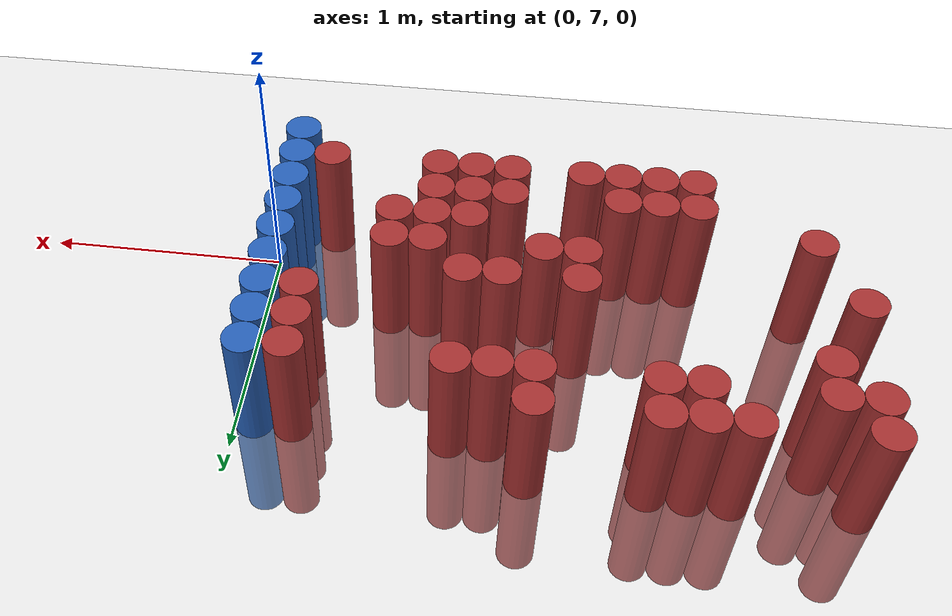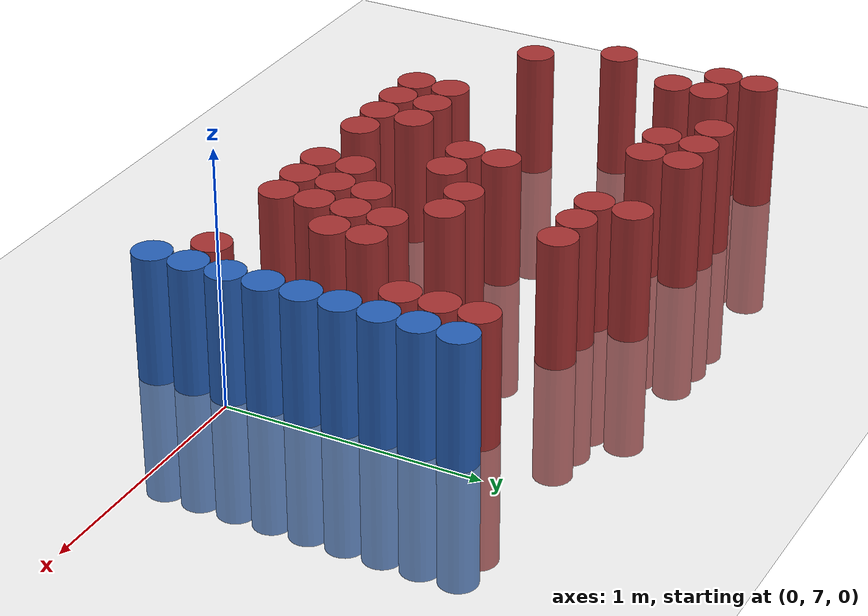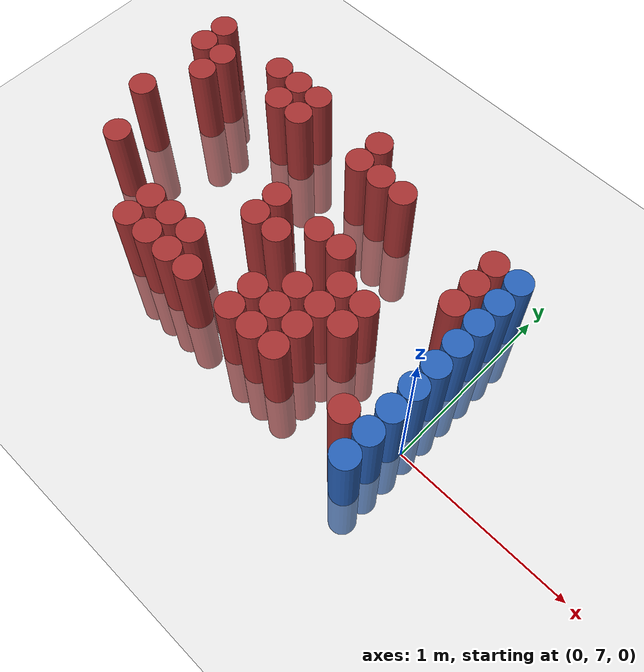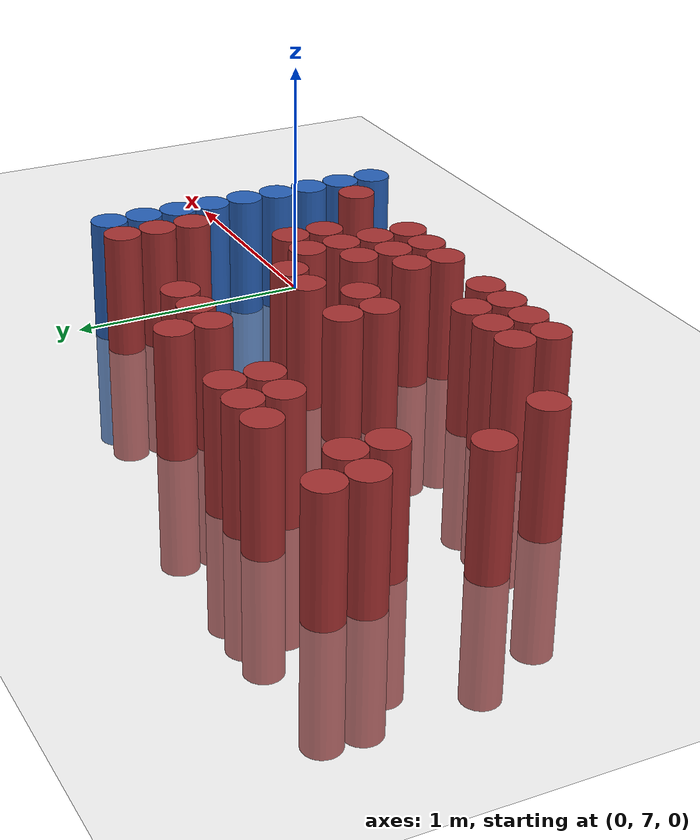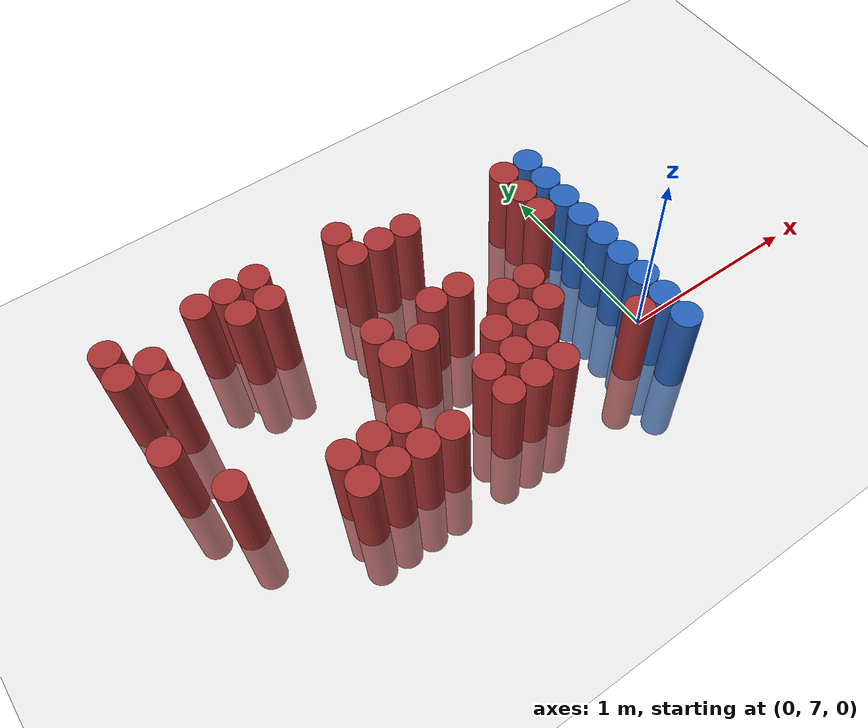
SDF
<sdf version="1.6">
 <world name="default">
  <model name="ground_plane">
   <static>1</static>
   <link name="link">
    <collision name="collision">
     <geometry><plane><normal>0 0 1</normal><size>100 100</size></plane></geometry>
     <surface><friction><ode><mu>100</mu><mu2>50</mu2></ode></friction></surface>
    </collision>
    <visual name="visual">
     <cast_shadows>0</cast_shadows>
     <geometry><plane><normal>0 0 1</normal><size>100 100</size></plane></geometry>
     <material>
      <script><uri>file://media/materials/scripts/gazebo.material</uri><name>Gazebo/Grey</name></script>
     </material>
    </visual>
   </link>
  </model>
  <model name="unit_cylinder_171">
   <static>1</static>
   <pose>-2.325000 7.425000 0.000000 0.000000 0.000000 0.000000</pose>
   <link name="link">
    <inertial>
     <mass>1</mass>
     <inertia><ixx>0.145833</ixx><ixy>0</ixy><ixz>0</ixz><iyy>0.145833</iyy><iyz>0</iyz><izz>0.125</izz></inertia>
    </inertial>
    <collision name="collision">
     <geometry><cylinder><radius>0.075000</radius><length>1</length></cylinder></geometry>
    </collision>
    <visual name="visual">
     <geometry><cylinder><radius>0.075000</radius><length>1</length></cylinder></geometry>
     <material>
      <ambient>0.648000 0.192000 0.192000 1</ambient>
      <diffuse>0.648000 0.192000 0.192000 1</diffuse>
     </material>
     <material>
      <script><name>Gazebo/Grey</name><uri>file://media/materials/scripts/gazebo.material</uri></script>
     </material>
    </visual>
   </link>
  </model>
  <model name="unit_cylinder_172">
   <static>1</static>
   <pose>-2.325000 7.875000 0.000000 0.000000 0.000000 0.000000</pose>
   <link name="link">
    <inertial>
     <mass>1</mass>
     <inertia><ixx>0.145833</ixx><ixy>0</ixy><ixz>0</ixz><iyy>0.145833</iyy><iyz>0</iyz><izz>0.125</izz></inertia>
    </inertial>
    <collision name="collision">
     <geometry><cylinder><radius>0.075000</radius><length>1</length></cylinder></geometry>
    </collision>
    <visual name="visual">
     <geometry><cylinder><radius>0.075000</radius><length>1</length></cylinder></geometry>
     <material>
      <ambient>0.648000 0.192000 0.192000 1</ambient>
      <diffuse>0.648000 0.192000 0.192000 1</diffuse>
     </material>
     <material>
      <script><name>Gazebo/Grey</name><uri>file://media/materials/scripts/gazebo.material</uri></script>
     </material>
    </visual>
   </link>
  </model>
  <model name="unit_cylinder_173">
   <static>1</static>
   <pose>-2.325000 8.025000 0.000000 0.000000 0.000000 0.000000</pose>
   <link name="link">
    <inertial>
     <mass>1</mass>
     <inertia><ixx>0.145833</ixx><ixy>0</ixy><ixz>0</ixz><iyy>0.145833</iyy><iyz>0</iyz><izz>0.125</izz></inertia>
    </inertial>
    <collision name="collision">
     <geometry><cylinder><radius>0.075000</radius><length>1</length></cylinder></geometry>
    </collision>
    <visual name="visual">
     <geometry><cylinder><radius>0.075000</radius><length>1</length></cylinder></geometry>
     <material>
      <ambient>0.648000 0.192000 0.192000 1</ambient>
      <diffuse>0.648000 0.192000 0.192000 1</diffuse>
     </material>
     <material>
      <script><name>Gazebo/Grey</name><uri>file://media/materials/scripts/gazebo.material</uri></script>
     </material>
    </visual>
   </link>
  </model>
  <model name="unit_cylinder_176">
   <static>1</static>
   <pose>-2.175000 7.125000 0.000000 0.000000 0.000000 0.000000</pose>
   <link name="link">
    <inertial>
     <mass>1</mass>
     <inertia><ixx>0.145833</ixx><ixy>0</ixy><ixz>0</ixz><iyy>0.145833</iyy><iyz>0</iyz><izz>0.125</izz></inertia>
    </inertial>
    <collision name="collision">
     <geometry><cylinder><radius>0.075000</radius><length>1</length></cylinder></geometry>
    </collision>
    <visual name="visual">
     <geometry><cylinder><radius>0.075000</radius><length>1</length></cylinder></geometry>
     <material>
      <ambient>0.648000 0.192000 0.192000 1</ambient>
      <diffuse>0.648000 0.192000 0.192000 1</diffuse>
     </material>
     <material>
      <script><name>Gazebo/Grey</name><uri>file://media/materials/scripts/gazebo.material</uri></script>
     </material>
    </visual>
   </link>
  </model>
  <model name="unit_cylinder_177">
   <static>1</static>
   <pose>-2.175000 7.725000 0.000000 0.000000 0.000000 0.000000</pose>
   <link name="link">
    <inertial>
     <mass>1</mass>
     <inertia><ixx>0.145833</ixx><ixy>0</ixy><ixz>0</ixz><iyy>0.145833</iyy><iyz>0</iyz><izz>0.125</izz></inertia>
    </inertial>
    <collision name="collision">
     <geometry><cylinder><radius>0.075000</radius><length>1</length></cylinder></geometry>
    </collision>
    <visual name="visual">
     <geometry><cylinder><radius>0.075000</radius><length>1</length></cylinder></geometry>
     <material>
      <ambient>0.648000 0.192000 0.192000 1</ambient>
      <diffuse>0.648000 0.192000 0.192000 1</diffuse>
     </material>
     <material>
      <script><name>Gazebo/Grey</name><uri>file://media/materials/scripts/gazebo.material</uri></script>
     </material>
    </visual>
   </link>
  </model>
  <model name="unit_cylinder_178">
   <static>1</static>
   <pose>-2.175000 7.875000 0.000000 0.000000 0.000000 0.000000</pose>
   <link name="link">
    <inertial>
     <mass>1</mass>
     <inertia><ixx>0.145833</ixx><ixy>0</ixy><ixz>0</ixz><iyy>0.145833</iyy><iyz>0</iyz><izz>0.125</izz></inertia>
    </inertial>
    <collision name="collision">
     <geometry><cylinder><radius>0.075000</radius><length>1</length></cylinder></geometry>
    </collision>
    <visual name="visual">
     <geometry><cylinder><radius>0.075000</radius><length>1</length></cylinder></geometry>
     <material>
      <ambient>0.648000 0.192000 0.192000 1</ambient>
      <diffuse>0.648000 0.192000 0.192000 1</diffuse>
     </material>
     <material>
      <script><name>Gazebo/Grey</name><uri>file://media/materials/scripts/gazebo.material</uri></script>
     </material>
    </visual>
   </link>
  </model>
  <model name="unit_cylinder_192">
   <static>1</static>
   <pose>-1.875000 8.025000 0.000000 0.000000 0.000000 0.000000</pose>
   <link name="link">
    <inertial>
     <mass>1</mass>
     <inertia><ixx>0.145833</ixx><ixy>0</ixy><ixz>0</ixz><iyy>0.145833</iyy><iyz>0</iyz><izz>0.125</izz></inertia>
    </inertial>
    <collision name="collision">
     <geometry><cylinder><radius>0.075000</radius><length>1</length></cylinder></geometry>
    </collision>
    <visual name="visual">
     <geometry><cylinder><radius>0.075000</radius><length>1</length></cylinder></geometry>
     <material>
      <ambient>0.648000 0.192000 0.192000 1</ambient>
      <diffuse>0.648000 0.192000 0.192000 1</diffuse>
     </material>
     <material>
      <script><name>Gazebo/Grey</name><uri>file://media/materials/scripts/gazebo.material</uri></script>
     </material>
    </visual>
   </link>
  </model>
  <model name="unit_cylinder_199">
   <static>1</static>
   <pose>-1.725000 6.825000 0.000000 0.000000 0.000000 0.000000</pose>
   <link name="link">
    <inertial>
     <mass>1</mass>
     <inertia><ixx>0.145833</ixx><ixy>0</ixy><ixz>0</ixz><iyy>0.145833</iyy><iyz>0</iyz><izz>0.125</izz></inertia>
    </inertial>
    <collision name="collision">
     <geometry><cylinder><radius>0.075000</radius><length>1</length></cylinder></geometry>
    </collision>
    <visual name="visual">
     <geometry><cylinder><radius>0.075000</radius><length>1</length></cylinder></geometry>
     <material>
      <ambient>0.648000 0.192000 0.192000 1</ambient>
      <diffuse>0.648000 0.192000 0.192000 1</diffuse>
     </material>
     <material>
      <script><name>Gazebo/Grey</name><uri>file://media/materials/scripts/gazebo.material</uri></script>
     </material>
    </visual>
   </link>
  </model>
  <model name="unit_cylinder_200">
   <static>1</static>
   <pose>-1.725000 6.975000 0.000000 0.000000 0.000000 0.000000</pose>
   <link name="link">
    <inertial>
     <mass>1</mass>
     <inertia><ixx>0.145833</ixx><ixy>0</ixy><ixz>0</ixz><iyy>0.145833</iyy><iyz>0</iyz><izz>0.125</izz></inertia>
    </inertial>
    <collision name="collision">
     <geometry><cylinder><radius>0.075000</radius><length>1</length></cylinder></geometry>
    </collision>
    <visual name="visual">
     <geometry><cylinder><radius>0.075000</radius><length>1</length></cylinder></geometry>
     <material>
      <ambient>0.648000 0.192000 0.192000 1</ambient>
      <diffuse>0.648000 0.192000 0.192000 1</diffuse>
     </material>
     <material>
      <script><name>Gazebo/Grey</name><uri>file://media/materials/scripts/gazebo.material</uri></script>
     </material>
    </visual>
   </link>
  </model>
  <model name="unit_cylinder_201">
   <static>1</static>
   <pose>-1.725000 7.875000 0.000000 0.000000 0.000000 0.000000</pose>
   <link name="link">
    <inertial>
     <mass>1</mass>
     <inertia><ixx>0.145833</ixx><ixy>0</ixy><ixz>0</ixz><iyy>0.145833</iyy><iyz>0</iyz><izz>0.125</izz></inertia>
    </inertial>
    <collision name="collision">
     <geometry><cylinder><radius>0.075000</radius><length>1</length></cylinder></geometry>
    </collision>
    <visual name="visual">
     <geometry><cylinder><radius>0.075000</radius><length>1</length></cylinder></geometry>
     <material>
      <ambient>0.648000 0.192000 0.192000 1</ambient>
      <diffuse>0.648000 0.192000 0.192000 1</diffuse>
     </material>
     <material>
      <script><name>Gazebo/Grey</name><uri>file://media/materials/scripts/gazebo.material</uri></script>
     </material>
    </visual>
   </link>
  </model>
  <model name="unit_cylinder_202">
   <static>1</static>
   <pose>-1.725000 8.025000 0.000000 0.000000 0.000000 0.000000</pose>
   <link name="link">
    <inertial>
     <mass>1</mass>
     <inertia><ixx>0.145833</ixx><ixy>0</ixy><ixz>0</ixz><iyy>0.145833</iyy><iyz>0</iyz><izz>0.125</izz></inertia>
    </inertial>
    <collision name="collision">
     <geometry><cylinder><radius>0.075000</radius><length>1</length></cylinder></geometry>
    </collision>
    <visual name="visual">
     <geometry><cylinder><radius>0.075000</radius><length>1</length></cylinder></geometry>
     <material>
      <ambient>0.648000 0.192000 0.192000 1</ambient>
      <diffuse>0.648000 0.192000 0.192000 1</diffuse>
     </material>
     <material>
      <script><name>Gazebo/Grey</name><uri>file://media/materials/scripts/gazebo.material</uri></script>
     </material>
    </visual>
   </link>
  </model>
  <model name="unit_cylinder_206">
   <static>1</static>
   <pose>-1.575000 6.825000 0.000000 0.000000 0.000000 0.000000</pose>
   <link name="link">
    <inertial>
     <mass>1</mass>
     <inertia><ixx>0.145833</ixx><ixy>0</ixy><ixz>0</ixz><iyy>0.145833</iyy><iyz>0</iyz><izz>0.125</izz></inertia>
    </inertial>
    <collision name="collision">
     <geometry><cylinder><radius>0.075000</radius><length>1</length></cylinder></geometry>
    </collision>
    <visual name="visual">
     <geometry><cylinder><radius>0.075000</radius><length>1</length></cylinder></geometry>
     <material>
      <ambient>0.648000 0.192000 0.192000 1</ambient>
      <diffuse>0.648000 0.192000 0.192000 1</diffuse>
     </material>
     <material>
      <script><name>Gazebo/Grey</name><uri>file://media/materials/scripts/gazebo.material</uri></script>
     </material>
    </visual>
   </link>
  </model>
  <model name="unit_cylinder_207">
   <static>1</static>
   <pose>-1.575000 6.975000 0.000000 0.000000 0.000000 0.000000</pose>
   <link name="link">
    <inertial>
     <mass>1</mass>
     <inertia><ixx>0.145833</ixx><ixy>0</ixy><ixz>0</ixz><iyy>0.145833</iyy><iyz>0</iyz><izz>0.125</izz></inertia>
    </inertial>
    <collision name="collision">
     <geometry><cylinder><radius>0.075000</radius><length>1</length></cylinder></geometry>
    </collision>
    <visual name="visual">
     <geometry><cylinder><radius>0.075000</radius><length>1</length></cylinder></geometry>
     <material>
      <ambient>0.648000 0.192000 0.192000 1</ambient>
      <diffuse>0.648000 0.192000 0.192000 1</diffuse>
     </material>
     <material>
      <script><name>Gazebo/Grey</name><uri>file://media/materials/scripts/gazebo.material</uri></script>
     </material>
    </visual>
   </link>
  </model>
  <model name="unit_cylinder_208">
   <static>1</static>
   <pose>-1.575000 7.875000 0.000000 0.000000 0.000000 0.000000</pose>
   <link name="link">
    <inertial>
     <mass>1</mass>
     <inertia><ixx>0.145833</ixx><ixy>0</ixy><ixz>0</ixz><iyy>0.145833</iyy><iyz>0</iyz><izz>0.125</izz></inertia>
    </inertial>
    <collision name="collision">
     <geometry><cylinder><radius>0.075000</radius><length>1</length></cylinder></geometry>
    </collision>
    <visual name="visual">
     <geometry><cylinder><radius>0.075000</radius><length>1</length></cylinder></geometry>
     <material>
      <ambient>0.648000 0.192000 0.192000 1</ambient>
      <diffuse>0.648000 0.192000 0.192000 1</diffuse>
     </material>
     <material>
      <script><name>Gazebo/Grey</name><uri>file://media/materials/scripts/gazebo.material</uri></script>
     </material>
    </visual>
   </link>
  </model>
  <model name="unit_cylinder_209">
   <static>1</static>
   <pose>-1.575000 8.025000 0.000000 0.000000 0.000000 0.000000</pose>
   <link name="link">
    <inertial>
     <mass>1</mass>
     <inertia><ixx>0.145833</ixx><ixy>0</ixy><ixz>0</ixz><iyy>0.145833</iyy><iyz>0</iyz><izz>0.125</izz></inertia>
    </inertial>
    <collision name="collision">
     <geometry><cylinder><radius>0.075000</radius><length>1</length></cylinder></geometry>
    </collision>
    <visual name="visual">
     <geometry><cylinder><radius>0.075000</radius><length>1</length></cylinder></geometry>
     <material>
      <ambient>0.648000 0.192000 0.192000 1</ambient>
      <diffuse>0.648000 0.192000 0.192000 1</diffuse>
     </material>
     <material>
      <script><name>Gazebo/Grey</name><uri>file://media/materials/scripts/gazebo.material</uri></script>
     </material>
    </visual>
   </link>
  </model>
  <model name="unit_cylinder_214">
   <static>1</static>
   <pose>-1.425000 6.825000 0.000000 0.000000 0.000000 0.000000</pose>
   <link name="link">
    <inertial>
     <mass>1</mass>
     <inertia><ixx>0.145833</ixx><ixy>0</ixy><ixz>0</ixz><iyy>0.145833</iyy><iyz>0</iyz><izz>0.125</izz></inertia>
    </inertial>
    <collision name="collision">
     <geometry><cylinder><radius>0.075000</radius><length>1</length></cylinder></geometry>
    </collision>
    <visual name="visual">
     <geometry><cylinder><radius>0.075000</radius><length>1</length></cylinder></geometry>
     <material>
      <ambient>0.648000 0.192000 0.192000 1</ambient>
      <diffuse>0.648000 0.192000 0.192000 1</diffuse>
     </material>
     <material>
      <script><name>Gazebo/Grey</name><uri>file://media/materials/scripts/gazebo.material</uri></script>
     </material>
    </visual>
   </link>
  </model>
  <model name="unit_cylinder_215">
   <static>1</static>
   <pose>-1.425000 6.975000 0.000000 0.000000 0.000000 0.000000</pose>
   <link name="link">
    <inertial>
     <mass>1</mass>
     <inertia><ixx>0.145833</ixx><ixy>0</ixy><ixz>0</ixz><iyy>0.145833</iyy><iyz>0</iyz><izz>0.125</izz></inertia>
    </inertial>
    <collision name="collision">
     <geometry><cylinder><radius>0.075000</radius><length>1</length></cylinder></geometry>
    </collision>
    <visual name="visual">
     <geometry><cylinder><radius>0.075000</radius><length>1</length></cylinder></geometry>
     <material>
      <ambient>0.648000 0.192000 0.192000 1</ambient>
      <diffuse>0.648000 0.192000 0.192000 1</diffuse>
     </material>
     <material>
      <script><name>Gazebo/Grey</name><uri>file://media/materials/scripts/gazebo.material</uri></script>
     </material>
    </visual>
   </link>
  </model>
  <model name="unit_cylinder_220">
   <static>1</static>
   <pose>-1.275000 6.825000 0.000000 0.000000 0.000000 0.000000</pose>
   <link name="link">
    <inertial>
     <mass>1</mass>
     <inertia><ixx>0.145833</ixx><ixy>0</ixy><ixz>0</ixz><iyy>0.145833</iyy><iyz>0</iyz><izz>0.125</izz></inertia>
    </inertial>
    <collision name="collision">
     <geometry><cylinder><radius>0.075000</radius><length>1</length></cylinder></geometry>
    </collision>
    <visual name="visual">
     <geometry><cylinder><radius>0.075000</radius><length>1</length></cylinder></geometry>
     <material>
      <ambient>0.648000 0.192000 0.192000 1</ambient>
      <diffuse>0.648000 0.192000 0.192000 1</diffuse>
     </material>
     <material>
      <script><name>Gazebo/Grey</name><uri>file://media/materials/scripts/gazebo.material</uri></script>
     </material>
    </visual>
   </link>
  </model>
  <model name="unit_cylinder_221">
   <static>1</static>
   <pose>-1.275000 7.275000 0.000000 0.000000 0.000000 0.000000</pose>
   <link name="link">
    <inertial>
     <mass>1</mass>
     <inertia><ixx>0.145833</ixx><ixy>0</ixy><ixz>0</ixz><iyy>0.145833</iyy><iyz>0</iyz><izz>0.125</izz></inertia>
    </inertial>
    <collision name="collision">
     <geometry><cylinder><radius>0.075000</radius><length>1</length></cylinder></geometry>
    </collision>
    <visual name="visual">
     <geometry><cylinder><radius>0.075000</radius><length>1</length></cylinder></geometry>
     <material>
      <ambient>0.648000 0.192000 0.192000 1</ambient>
      <diffuse>0.648000 0.192000 0.192000 1</diffuse>
     </material>
     <material>
      <script><name>Gazebo/Grey</name><uri>file://media/materials/scripts/gazebo.material</uri></script>
     </material>
    </visual>
   </link>
  </model>
  <model name="unit_cylinder_222">
   <static>1</static>
   <pose>-1.275000 7.425000 0.000000 0.000000 0.000000 0.000000</pose>
   <link name="link">
    <inertial>
     <mass>1</mass>
     <inertia><ixx>0.145833</ixx><ixy>0</ixy><ixz>0</ixz><iyy>0.145833</iyy><iyz>0</iyz><izz>0.125</izz></inertia>
    </inertial>
    <collision name="collision">
     <geometry><cylinder><radius>0.075000</radius><length>1</length></cylinder></geometry>
    </collision>
    <visual name="visual">
     <geometry><cylinder><radius>0.075000</radius><length>1</length></cylinder></geometry>
     <material>
      <ambient>0.648000 0.192000 0.192000 1</ambient>
      <diffuse>0.648000 0.192000 0.192000 1</diffuse>
     </material>
     <material>
      <script><name>Gazebo/Grey</name><uri>file://media/materials/scripts/gazebo.material</uri></script>
     </material>
    </visual>
   </link>
  </model>
  <model name="unit_cylinder_225">
   <static>1</static>
   <pose>-1.125000 7.275000 0.000000 0.000000 0.000000 0.000000</pose>
   <link name="link">
    <inertial>
     <mass>1</mass>
     <inertia><ixx>0.145833</ixx><ixy>0</ixy><ixz>0</ixz><iyy>0.145833</iyy><iyz>0</iyz><izz>0.125</izz></inertia>
    </inertial>
    <collision name="collision">
     <geometry><cylinder><radius>0.075000</radius><length>1</length></cylinder></geometry>
    </collision>
    <visual name="visual">
     <geometry><cylinder><radius>0.075000</radius><length>1</length></cylinder></geometry>
     <material>
      <ambient>0.648000 0.192000 0.192000 1</ambient>
      <diffuse>0.648000 0.192000 0.192000 1</diffuse>
     </material>
     <material>
      <script><name>Gazebo/Grey</name><uri>file://media/materials/scripts/gazebo.material</uri></script>
     </material>
    </visual>
   </link>
  </model>
  <model name="unit_cylinder_226">
   <static>1</static>
   <pose>-1.125000 7.875000 0.000000 0.000000 0.000000 0.000000</pose>
   <link name="link">
    <inertial>
     <mass>1</mass>
     <inertia><ixx>0.145833</ixx><ixy>0</ixy><ixz>0</ixz><iyy>0.145833</iyy><iyz>0</iyz><izz>0.125</izz></inertia>
    </inertial>
    <collision name="collision">
     <geometry><cylinder><radius>0.075000</radius><length>1</length></cylinder></geometry>
    </collision>
    <visual name="visual">
     <geometry><cylinder><radius>0.075000</radius><length>1</length></cylinder></geometry>
     <material>
      <ambient>0.648000 0.192000 0.192000 1</ambient>
      <diffuse>0.648000 0.192000 0.192000 1</diffuse>
     </material>
     <material>
      <script><name>Gazebo/Grey</name><uri>file://media/materials/scripts/gazebo.material</uri></script>
     </material>
    </visual>
   </link>
  </model>
  <model name="unit_cylinder_227">
   <static>1</static>
   <pose>-1.125000 8.025000 0.000000 0.000000 0.000000 0.000000</pose>
   <link name="link">
    <inertial>
     <mass>1</mass>
     <inertia><ixx>0.145833</ixx><ixy>0</ixy><ixz>0</ixz><iyy>0.145833</iyy><iyz>0</iyz><izz>0.125</izz></inertia>
    </inertial>
    <collision name="collision">
     <geometry><cylinder><radius>0.075000</radius><length>1</length></cylinder></geometry>
    </collision>
    <visual name="visual">
     <geometry><cylinder><radius>0.075000</radius><length>1</length></cylinder></geometry>
     <material>
      <ambient>0.648000 0.192000 0.192000 1</ambient>
      <diffuse>0.648000 0.192000 0.192000 1</diffuse>
     </material>
     <material>
      <script><name>Gazebo/Grey</name><uri>file://media/materials/scripts/gazebo.material</uri></script>
     </material>
    </visual>
   </link>
  </model>
  <model name="unit_cylinder_228">
   <static>1</static>
   <pose>-0.975000 6.825000 0.000000 0.000000 0.000000 0.000000</pose>
   <link name="link">
    <inertial>
     <mass>1</mass>
     <inertia><ixx>0.145833</ixx><ixy>0</ixy><ixz>0</ixz><iyy>0.145833</iyy><iyz>0</iyz><izz>0.125</izz></inertia>
    </inertial>
    <collision name="collision">
     <geometry><cylinder><radius>0.075000</radius><length>1</length></cylinder></geometry>
    </collision>
    <visual name="visual">
     <geometry><cylinder><radius>0.075000</radius><length>1</length></cylinder></geometry>
     <material>
      <ambient>0.648000 0.192000 0.192000 1</ambient>
      <diffuse>0.648000 0.192000 0.192000 1</diffuse>
     </material>
     <material>
      <script><name>Gazebo/Grey</name><uri>file://media/materials/scripts/gazebo.material</uri></script>
     </material>
    </visual>
   </link>
  </model>
  <model name="unit_cylinder_229">
   <static>1</static>
   <pose>-0.975000 6.975000 0.000000 0.000000 0.000000 0.000000</pose>
   <link name="link">
    <inertial>
     <mass>1</mass>
     <inertia><ixx>0.145833</ixx><ixy>0</ixy><ixz>0</ixz><iyy>0.145833</iyy><iyz>0</iyz><izz>0.125</izz></inertia>
    </inertial>
    <collision name="collision">
     <geometry><cylinder><radius>0.075000</radius><length>1</length></cylinder></geometry>
    </collision>
    <visual name="visual">
     <geometry><cylinder><radius>0.075000</radius><length>1</length></cylinder></geometry>
     <material>
      <ambient>0.648000 0.192000 0.192000 1</ambient>
      <diffuse>0.648000 0.192000 0.192000 1</diffuse>
     </material>
     <material>
      <script><name>Gazebo/Grey</name><uri>file://media/materials/scripts/gazebo.material</uri></script>
     </material>
    </visual>
   </link>
  </model>
  <model name="unit_cylinder_230">
   <static>1</static>
   <pose>-0.975000 7.425000 0.000000 0.000000 0.000000 0.000000</pose>
   <link name="link">
    <inertial>
     <mass>1</mass>
     <inertia><ixx>0.145833</ixx><ixy>0</ixy><ixz>0</ixz><iyy>0.145833</iyy><iyz>0</iyz><izz>0.125</izz></inertia>
    </inertial>
    <collision name="collision">
     <geometry><cylinder><radius>0.075000</radius><length>1</length></cylinder></geometry>
    </collision>
    <visual name="visual">
     <geometry><cylinder><radius>0.075000</radius><length>1</length></cylinder></geometry>
     <material>
      <ambient>0.648000 0.192000 0.192000 1</ambient>
      <diffuse>0.648000 0.192000 0.192000 1</diffuse>
     </material>
     <material>
      <script><name>Gazebo/Grey</name><uri>file://media/materials/scripts/gazebo.material</uri></script>
     </material>
    </visual>
   </link>
  </model>
  <model name="unit_cylinder_231">
   <static>1</static>
   <pose>-0.975000 7.875000 0.000000 0.000000 0.000000 0.000000</pose>
   <link name="link">
    <inertial>
     <mass>1</mass>
     <inertia><ixx>0.145833</ixx><ixy>0</ixy><ixz>0</ixz><iyy>0.145833</iyy><iyz>0</iyz><izz>0.125</izz></inertia>
    </inertial>
    <collision name="collision">
     <geometry><cylinder><radius>0.075000</radius><length>1</length></cylinder></geometry>
    </collision>
    <visual name="visual">
     <geometry><cylinder><radius>0.075000</radius><length>1</length></cylinder></geometry>
     <material>
      <ambient>0.648000 0.192000 0.192000 1</ambient>
      <diffuse>0.648000 0.192000 0.192000 1</diffuse>
     </material>
     <material>
      <script><name>Gazebo/Grey</name><uri>file://media/materials/scripts/gazebo.material</uri></script>
     </material>
    </visual>
   </link>
  </model>
  <model name="unit_cylinder_234">
   <static>1</static>
   <pose>-0.825000 6.825000 0.000000 0.000000 0.000000 0.000000</pose>
   <link name="link">
    <inertial>
     <mass>1</mass>
     <inertia><ixx>0.145833</ixx><ixy>0</ixy><ixz>0</ixz><iyy>0.145833</iyy><iyz>0</iyz><izz>0.125</izz></inertia>
    </inertial>
    <collision name="collision">
     <geometry><cylinder><radius>0.075000</radius><length>1</length></cylinder></geometry>
    </collision>
    <visual name="visual">
     <geometry><cylinder><radius>0.075000</radius><length>1</length></cylinder></geometry>
     <material>
      <ambient>0.648000 0.192000 0.192000 1</ambient>
      <diffuse>0.648000 0.192000 0.192000 1</diffuse>
     </material>
     <material>
      <script><name>Gazebo/Grey</name><uri>file://media/materials/scripts/gazebo.material</uri></script>
     </material>
    </visual>
   </link>
  </model>
  <model name="unit_cylinder_235">
   <static>1</static>
   <pose>-0.825000 6.975000 0.000000 0.000000 0.000000 0.000000</pose>
   <link name="link">
    <inertial>
     <mass>1</mass>
     <inertia><ixx>0.145833</ixx><ixy>0</ixy><ixz>0</ixz><iyy>0.145833</iyy><iyz>0</iyz><izz>0.125</izz></inertia>
    </inertial>
    <collision name="collision">
     <geometry><cylinder><radius>0.075000</radius><length>1</length></cylinder></geometry>
    </collision>
    <visual name="visual">
     <geometry><cylinder><radius>0.075000</radius><length>1</length></cylinder></geometry>
     <material>
      <ambient>0.648000 0.192000 0.192000 1</ambient>
      <diffuse>0.648000 0.192000 0.192000 1</diffuse>
     </material>
     <material>
      <script><name>Gazebo/Grey</name><uri>file://media/materials/scripts/gazebo.material</uri></script>
     </material>
    </visual>
   </link>
  </model>
  <model name="unit_cylinder_236">
   <static>1</static>
   <pose>-0.825000 7.125000 0.000000 0.000000 0.000000 0.000000</pose>
   <link name="link">
    <inertial>
     <mass>1</mass>
     <inertia><ixx>0.145833</ixx><ixy>0</ixy><ixz>0</ixz><iyy>0.145833</iyy><iyz>0</iyz><izz>0.125</izz></inertia>
    </inertial>
    <collision name="collision">
     <geometry><cylinder><radius>0.075000</radius><length>1</length></cylinder></geometry>
    </collision>
    <visual name="visual">
     <geometry><cylinder><radius>0.075000</radius><length>1</length></cylinder></geometry>
     <material>
      <ambient>0.648000 0.192000 0.192000 1</ambient>
      <diffuse>0.648000 0.192000 0.192000 1</diffuse>
     </material>
     <material>
      <script><name>Gazebo/Grey</name><uri>file://media/materials/scripts/gazebo.material</uri></script>
     </material>
    </visual>
   </link>
  </model>
  <model name="unit_cylinder_237">
   <static>1</static>
   <pose>-0.825000 7.425000 0.000000 0.000000 0.000000 0.000000</pose>
   <link name="link">
    <inertial>
     <mass>1</mass>
     <inertia><ixx>0.145833</ixx><ixy>0</ixy><ixz>0</ixz><iyy>0.145833</iyy><iyz>0</iyz><izz>0.125</izz></inertia>
    </inertial>
    <collision name="collision">
     <geometry><cylinder><radius>0.075000</radius><length>1</length></cylinder></geometry>
    </collision>
    <visual name="visual">
     <geometry><cylinder><radius>0.075000</radius><length>1</length></cylinder></geometry>
     <material>
      <ambient>0.648000 0.192000 0.192000 1</ambient>
      <diffuse>0.648000 0.192000 0.192000 1</diffuse>
     </material>
     <material>
      <script><name>Gazebo/Grey</name><uri>file://media/materials/scripts/gazebo.material</uri></script>
     </material>
    </visual>
   </link>
  </model>
  <model name="unit_cylinder_238">
   <static>1</static>
   <pose>-0.825000 7.875000 0.000000 0.000000 0.000000 0.000000</pose>
   <link name="link">
    <inertial>
     <mass>1</mass>
     <inertia><ixx>0.145833</ixx><ixy>0</ixy><ixz>0</ixz><iyy>0.145833</iyy><iyz>0</iyz><izz>0.125</izz></inertia>
    </inertial>
    <collision name="collision">
     <geometry><cylinder><radius>0.075000</radius><length>1</length></cylinder></geometry>
    </collision>
    <visual name="visual">
     <geometry><cylinder><radius>0.075000</radius><length>1</length></cylinder></geometry>
     <material>
      <ambient>0.648000 0.192000 0.192000 1</ambient>
      <diffuse>0.648000 0.192000 0.192000 1</diffuse>
     </material>
     <material>
      <script><name>Gazebo/Grey</name><uri>file://media/materials/scripts/gazebo.material</uri></script>
     </material>
    </visual>
   </link>
  </model>
  <model name="unit_cylinder_242">
   <static>1</static>
   <pose>-0.675000 6.825000 0.000000 0.000000 0.000000 0.000000</pose>
   <link name="link">
    <inertial>
     <mass>1</mass>
     <inertia><ixx>0.145833</ixx><ixy>0</ixy><ixz>0</ixz><iyy>0.145833</iyy><iyz>0</iyz><izz>0.125</izz></inertia>
    </inertial>
    <collision name="collision">
     <geometry><cylinder><radius>0.075000</radius><length>1</length></cylinder></geometry>
    </collision>
    <visual name="visual">
     <geometry><cylinder><radius>0.075000</radius><length>1</length></cylinder></geometry>
     <material>
      <ambient>0.648000 0.192000 0.192000 1</ambient>
      <diffuse>0.648000 0.192000 0.192000 1</diffuse>
     </material>
     <material>
      <script><name>Gazebo/Grey</name><uri>file://media/materials/scripts/gazebo.material</uri></script>
     </material>
    </visual>
   </link>
  </model>
  <model name="unit_cylinder_243">
   <static>1</static>
   <pose>-0.675000 6.975000 0.000000 0.000000 0.000000 0.000000</pose>
   <link name="link">
    <inertial>
     <mass>1</mass>
     <inertia><ixx>0.145833</ixx><ixy>0</ixy><ixz>0</ixz><iyy>0.145833</iyy><iyz>0</iyz><izz>0.125</izz></inertia>
    </inertial>
    <collision name="collision">
     <geometry><cylinder><radius>0.075000</radius><length>1</length></cylinder></geometry>
    </collision>
    <visual name="visual">
     <geometry><cylinder><radius>0.075000</radius><length>1</length></cylinder></geometry>
     <material>
      <ambient>0.648000 0.192000 0.192000 1</ambient>
      <diffuse>0.648000 0.192000 0.192000 1</diffuse>
     </material>
     <material>
      <script><name>Gazebo/Grey</name><uri>file://media/materials/scripts/gazebo.material</uri></script>
     </material>
    </visual>
   </link>
  </model>
  <model name="unit_cylinder_244">
   <static>1</static>
   <pose>-0.675000 7.125000 0.000000 0.000000 0.000000 0.000000</pose>
   <link name="link">
    <inertial>
     <mass>1</mass>
     <inertia><ixx>0.145833</ixx><ixy>0</ixy><ixz>0</ixz><iyy>0.145833</iyy><iyz>0</iyz><izz>0.125</izz></inertia>
    </inertial>
    <collision name="collision">
     <geometry><cylinder><radius>0.075000</radius><length>1</length></cylinder></geometry>
    </collision>
    <visual name="visual">
     <geometry><cylinder><radius>0.075000</radius><length>1</length></cylinder></geometry>
     <material>
      <ambient>0.648000 0.192000 0.192000 1</ambient>
      <diffuse>0.648000 0.192000 0.192000 1</diffuse>
     </material>
     <material>
      <script><name>Gazebo/Grey</name><uri>file://media/materials/scripts/gazebo.material</uri></script>
     </material>
    </visual>
   </link>
  </model>
  <model name="unit_cylinder_245">
   <static>1</static>
   <pose>-0.675000 7.275000 0.000000 0.000000 0.000000 0.000000</pose>
   <link name="link">
    <inertial>
     <mass>1</mass>
     <inertia><ixx>0.145833</ixx><ixy>0</ixy><ixz>0</ixz><iyy>0.145833</iyy><iyz>0</iyz><izz>0.125</izz></inertia>
    </inertial>
    <collision name="collision">
     <geometry><cylinder><radius>0.075000</radius><length>1</length></cylinder></geometry>
    </collision>
    <visual name="visual">
     <geometry><cylinder><radius>0.075000</radius><length>1</length></cylinder></geometry>
     <material>
      <ambient>0.648000 0.192000 0.192000 1</ambient>
      <diffuse>0.648000 0.192000 0.192000 1</diffuse>
     </material>
     <material>
      <script><name>Gazebo/Grey</name><uri>file://media/materials/scripts/gazebo.material</uri></script>
     </material>
    </visual>
   </link>
  </model>
  <model name="unit_cylinder_250">
   <static>1</static>
   <pose>-0.525000 7.125000 0.000000 0.000000 0.000000 0.000000</pose>
   <link name="link">
    <inertial>
     <mass>1</mass>
     <inertia><ixx>0.145833</ixx><ixy>0</ixy><ixz>0</ixz><iyy>0.145833</iyy><iyz>0</iyz><izz>0.125</izz></inertia>
    </inertial>
    <collision name="collision">
     <geometry><cylinder><radius>0.075000</radius><length>1</length></cylinder></geometry>
    </collision>
    <visual name="visual">
     <geometry><cylinder><radius>0.075000</radius><length>1</length></cylinder></geometry>
     <material>
      <ambient>0.648000 0.192000 0.192000 1</ambient>
      <diffuse>0.648000 0.192000 0.192000 1</diffuse>
     </material>
     <material>
      <script><name>Gazebo/Grey</name><uri>file://media/materials/scripts/gazebo.material</uri></script>
     </material>
    </visual>
   </link>
  </model>
  <model name="unit_cylinder_251">
   <static>1</static>
   <pose>-0.525000 7.275000 0.000000 0.000000 0.000000 0.000000</pose>
   <link name="link">
    <inertial>
     <mass>1</mass>
     <inertia><ixx>0.145833</ixx><ixy>0</ixy><ixz>0</ixz><iyy>0.145833</iyy><iyz>0</iyz><izz>0.125</izz></inertia>
    </inertial>
    <collision name="collision">
     <geometry><cylinder><radius>0.075000</radius><length>1</length></cylinder></geometry>
    </collision>
    <visual name="visual">
     <geometry><cylinder><radius>0.075000</radius><length>1</length></cylinder></geometry>
     <material>
      <ambient>0.648000 0.192000 0.192000 1</ambient>
      <diffuse>0.648000 0.192000 0.192000 1</diffuse>
     </material>
     <material>
      <script><name>Gazebo/Grey</name><uri>file://media/materials/scripts/gazebo.material</uri></script>
     </material>
    </visual>
   </link>
  </model>
  <model name="unit_cylinder_267">
   <static>1</static>
   <pose>-0.225000 6.825000 0.000000 0.000000 0.000000 0.000000</pose>
   <link name="link">
    <inertial>
     <mass>1</mass>
     <inertia><ixx>0.145833</ixx><ixy>0</ixy><ixz>0</ixz><iyy>0.145833</iyy><iyz>0</iyz><izz>0.125</izz></inertia>
    </inertial>
    <collision name="collision">
     <geometry><cylinder><radius>0.075000</radius><length>1</length></cylinder></geometry>
    </collision>
    <visual name="visual">
     <geometry><cylinder><radius>0.075000</radius><length>1</length></cylinder></geometry>
     <material>
      <ambient>0.648000 0.192000 0.192000 1</ambient>
      <diffuse>0.648000 0.192000 0.192000 1</diffuse>
     </material>
     <material>
      <script><name>Gazebo/Grey</name><uri>file://media/materials/scripts/gazebo.material</uri></script>
     </material>
    </visual>
   </link>
  </model>
  <model name="unit_cylinder_268">
   <static>1</static>
   <pose>-0.225000 7.575000 0.000000 0.000000 0.000000 0.000000</pose>
   <link name="link">
    <inertial>
     <mass>1</mass>
     <inertia><ixx>0.145833</ixx><ixy>0</ixy><ixz>0</ixz><iyy>0.145833</iyy><iyz>0</iyz><izz>0.125</izz></inertia>
    </inertial>
    <collision name="collision">
     <geometry><cylinder><radius>0.075000</radius><length>1</length></cylinder></geometry>
    </collision>
    <visual name="visual">
     <geometry><cylinder><radius>0.075000</radius><length>1</length></cylinder></geometry>
     <material>
      <ambient>0.648000 0.192000 0.192000 1</ambient>
      <diffuse>0.648000 0.192000 0.192000 1</diffuse>
     </material>
     <material>
      <script><name>Gazebo/Grey</name><uri>file://media/materials/scripts/gazebo.material</uri></script>
     </material>
    </visual>
   </link>
  </model>
  <model name="unit_cylinder_269">
   <static>1</static>
   <pose>-0.225000 7.725000 0.000000 0.000000 0.000000 0.000000</pose>
   <link name="link">
    <inertial>
     <mass>1</mass>
     <inertia><ixx>0.145833</ixx><ixy>0</ixy><ixz>0</ixz><iyy>0.145833</iyy><iyz>0</iyz><izz>0.125</izz></inertia>
    </inertial>
    <collision name="collision">
     <geometry><cylinder><radius>0.075000</radius><length>1</length></cylinder></geometry>
    </collision>
    <visual name="visual">
     <geometry><cylinder><radius>0.075000</radius><length>1</length></cylinder></geometry>
     <material>
      <ambient>0.648000 0.192000 0.192000 1</ambient>
      <diffuse>0.648000 0.192000 0.192000 1</diffuse>
     </material>
     <material>
      <script><name>Gazebo/Grey</name><uri>file://media/materials/scripts/gazebo.material</uri></script>
     </material>
    </visual>
   </link>
  </model>
  <model name="unit_cylinder_270">
   <static>1</static>
   <pose>-0.225000 7.875000 0.000000 0.000000 0.000000 0.000000</pose>
   <link name="link">
    <inertial>
     <mass>1</mass>
     <inertia><ixx>0.145833</ixx><ixy>0</ixy><ixz>0</ixz><iyy>0.145833</iyy><iyz>0</iyz><izz>0.125</izz></inertia>
    </inertial>
    <collision name="collision">
     <geometry><cylinder><radius>0.075000</radius><length>1</length></cylinder></geometry>
    </collision>
    <visual name="visual">
     <geometry><cylinder><radius>0.075000</radius><length>1</length></cylinder></geometry>
     <material>
      <ambient>0.648000 0.192000 0.192000 1</ambient>
      <diffuse>0.648000 0.192000 0.192000 1</diffuse>
     </material>
     <material>
      <script><name>Gazebo/Grey</name><uri>file://media/materials/scripts/gazebo.material</uri></script>
     </material>
    </visual>
   </link>
  </model>
  <model name="unit_cylinder_289">
   <static>1</static>
   <pose>-0.075000 6.675000 0.000000 0.000000 0.000000 0.000000</pose>
   <link name="link">
    <inertial>
     <mass>1</mass>
     <inertia><ixx>0.145833</ixx><ixy>0</ixy><ixz>0</ixz><iyy>0.145833</iyy><iyz>0</iyz><izz>0.125</izz></inertia>
    </inertial>
    <collision name="collision">
     <geometry><cylinder><radius>0.075000</radius><length>1</length></cylinder></geometry>
    </collision>
    <visual name="visual">
     <geometry><cylinder><radius>0.075000</radius><length>1</length></cylinder></geometry>
     <material>
      <ambient>0.152000 0.379000 0.720000 1</ambient>
      <diffuse>0.152000 0.379000 0.720000 1</diffuse>
     </material>
     <material>
      <script><name>Gazebo/Grey</name><uri>file://media/materials/scripts/gazebo.material</uri></script>
     </material>
    </visual>
   </link>
  </model>
  <model name="unit_cylinder_290">
   <static>1</static>
   <pose>-0.075000 6.825000 0.000000 0.000000 0.000000 0.000000</pose>
   <link name="link">
    <inertial>
     <mass>1</mass>
     <inertia><ixx>0.145833</ixx><ixy>0</ixy><ixz>0</ixz><iyy>0.145833</iyy><iyz>0</iyz><izz>0.125</izz></inertia>
    </inertial>
    <collision name="collision">
     <geometry><cylinder><radius>0.075000</radius><length>1</length></cylinder></geometry>
    </collision>
    <visual name="visual">
     <geometry><cylinder><radius>0.075000</radius><length>1</length></cylinder></geometry>
     <material>
      <ambient>0.152000 0.379000 0.720000 1</ambient>
      <diffuse>0.152000 0.379000 0.720000 1</diffuse>
     </material>
     <material>
      <script><name>Gazebo/Grey</name><uri>file://media/materials/scripts/gazebo.material</uri></script>
     </material>
    </visual>
   </link>
  </model>
  <model name="unit_cylinder_291">
   <static>1</static>
   <pose>-0.075000 6.975000 0.000000 0.000000 0.000000 0.000000</pose>
   <link name="link">
    <inertial>
     <mass>1</mass>
     <inertia><ixx>0.145833</ixx><ixy>0</ixy><ixz>0</ixz><iyy>0.145833</iyy><iyz>0</iyz><izz>0.125</izz></inertia>
    </inertial>
    <collision name="collision">
     <geometry><cylinder><radius>0.075000</radius><length>1</length></cylinder></geometry>
    </collision>
    <visual name="visual">
     <geometry><cylinder><radius>0.075000</radius><length>1</length></cylinder></geometry>
     <material>
      <ambient>0.152000 0.379000 0.720000 1</ambient>
      <diffuse>0.152000 0.379000 0.720000 1</diffuse>
     </material>
     <material>
      <script><name>Gazebo/Grey</name><uri>file://media/materials/scripts/gazebo.material</uri></script>
     </material>
    </visual>
   </link>
  </model>
  <model name="unit_cylinder_292">
   <static>1</static>
   <pose>-0.075000 7.125000 0.000000 0.000000 0.000000 0.000000</pose>
   <link name="link">
    <inertial>
     <mass>1</mass>
     <inertia><ixx>0.145833</ixx><ixy>0</ixy><ixz>0</ixz><iyy>0.145833</iyy><iyz>0</iyz><izz>0.125</izz></inertia>
    </inertial>
    <collision name="collision">
     <geometry><cylinder><radius>0.075000</radius><length>1</length></cylinder></geometry>
    </collision>
    <visual name="visual">
     <geometry><cylinder><radius>0.075000</radius><length>1</length></cylinder></geometry>
     <material>
      <ambient>0.152000 0.379000 0.720000 1</ambient>
      <diffuse>0.152000 0.379000 0.720000 1</diffuse>
     </material>
     <material>
      <script><name>Gazebo/Grey</name><uri>file://media/materials/scripts/gazebo.material</uri></script>
     </material>
    </visual>
   </link>
  </model>
  <model name="unit_cylinder_293">
   <static>1</static>
   <pose>-0.075000 7.275000 0.000000 0.000000 0.000000 0.000000</pose>
   <link name="link">
    <inertial>
     <mass>1</mass>
     <inertia><ixx>0.145833</ixx><ixy>0</ixy><ixz>0</ixz><iyy>0.145833</iyy><iyz>0</iyz><izz>0.125</izz></inertia>
    </inertial>
    <collision name="collision">
     <geometry><cylinder><radius>0.075000</radius><length>1</length></cylinder></geometry>
    </collision>
    <visual name="visual">
     <geometry><cylinder><radius>0.075000</radius><length>1</length></cylinder></geometry>
     <material>
      <ambient>0.152000 0.379000 0.720000 1</ambient>
      <diffuse>0.152000 0.379000 0.720000 1</diffuse>
     </material>
     <material>
      <script><name>Gazebo/Grey</name><uri>file://media/materials/scripts/gazebo.material</uri></script>
     </material>
    </visual>
   </link>
  </model>
  <model name="unit_cylinder_294">
   <static>1</static>
   <pose>-0.075000 7.425000 0.000000 0.000000 0.000000 0.000000</pose>
   <link name="link">
    <inertial>
     <mass>1</mass>
     <inertia><ixx>0.145833</ixx><ixy>0</ixy><ixz>0</ixz><iyy>0.145833</iyy><iyz>0</iyz><izz>0.125</izz></inertia>
    </inertial>
    <collision name="collision">
     <geometry><cylinder><radius>0.075000</radius><length>1</length></cylinder></geometry>
    </collision>
    <visual name="visual">
     <geometry><cylinder><radius>0.075000</radius><length>1</length></cylinder></geometry>
     <material>
      <ambient>0.152000 0.379000 0.720000 1</ambient>
      <diffuse>0.152000 0.379000 0.720000 1</diffuse>
     </material>
     <material>
      <script><name>Gazebo/Grey</name><uri>file://media/materials/scripts/gazebo.material</uri></script>
     </material>
    </visual>
   </link>
  </model>
  <model name="unit_cylinder_295">
   <static>1</static>
   <pose>-0.075000 7.575000 0.000000 0.000000 0.000000 0.000000</pose>
   <link name="link">
    <inertial>
     <mass>1</mass>
     <inertia><ixx>0.145833</ixx><ixy>0</ixy><ixz>0</ixz><iyy>0.145833</iyy><iyz>0</iyz><izz>0.125</izz></inertia>
    </inertial>
    <collision name="collision">
     <geometry><cylinder><radius>0.075000</radius><length>1</length></cylinder></geometry>
    </collision>
    <visual name="visual">
     <geometry><cylinder><radius>0.075000</radius><length>1</length></cylinder></geometry>
     <material>
      <ambient>0.152000 0.379000 0.720000 1</ambient>
      <diffuse>0.152000 0.379000 0.720000 1</diffuse>
     </material>
     <material>
      <script><name>Gazebo/Grey</name><uri>file://media/materials/scripts/gazebo.material</uri></script>
     </material>
    </visual>
   </link>
  </model>
  <model name="unit_cylinder_296">
   <static>1</static>
   <pose>-0.075000 7.725000 0.000000 0.000000 0.000000 0.000000</pose>
   <link name="link">
    <inertial>
     <mass>1</mass>
     <inertia><ixx>0.145833</ixx><ixy>0</ixy><ixz>0</ixz><iyy>0.145833</iyy><iyz>0</iyz><izz>0.125</izz></inertia>
    </inertial>
    <collision name="collision">
     <geometry><cylinder><radius>0.075000</radius><length>1</length></cylinder></geometry>
    </collision>
    <visual name="visual">
     <geometry><cylinder><radius>0.075000</radius><length>1</length></cylinder></geometry>
     <material>
      <ambient>0.152000 0.379000 0.720000 1</ambient>
      <diffuse>0.152000 0.379000 0.720000 1</diffuse>
     </material>
     <material>
      <script><name>Gazebo/Grey</name><uri>file://media/materials/scripts/gazebo.material</uri></script>
     </material>
    </visual>
   </link>
  </model>
  <model name="unit_cylinder_297">
   <static>1</static>
   <pose>-0.075000 7.875000 0.000000 0.000000 0.000000 0.000000</pose>
   <link name="link">
    <inertial>
     <mass>1</mass>
     <inertia><ixx>0.145833</ixx><ixy>0</ixy><ixz>0</ixz><iyy>0.145833</iyy><iyz>0</iyz><izz>0.125</izz></inertia>
    </inertial>
    <collision name="collision">
     <geometry><cylinder><radius>0.075000</radius><length>1</length></cylinder></geometry>
    </collision>
    <visual name="visual">
     <geometry><cylinder><radius>0.075000</radius><length>1</length></cylinder></geometry>
     <material>
      <ambient>0.152000 0.379000 0.720000 1</ambient>
      <diffuse>0.152000 0.379000 0.720000 1</diffuse>
     </material>
     <material>
      <script><name>Gazebo/Grey</name><uri>file://media/materials/scripts/gazebo.material</uri></script>
     </material>
    </visual>
   </link>
  </model>
 </world>
</sdf>
